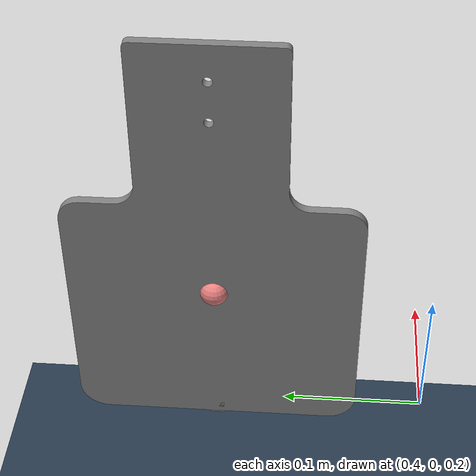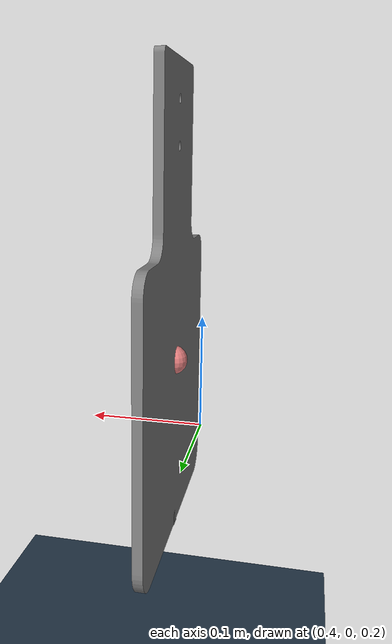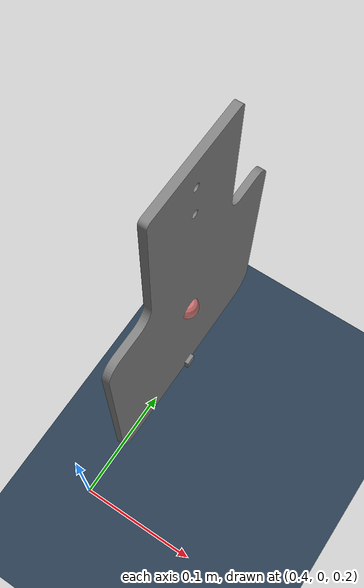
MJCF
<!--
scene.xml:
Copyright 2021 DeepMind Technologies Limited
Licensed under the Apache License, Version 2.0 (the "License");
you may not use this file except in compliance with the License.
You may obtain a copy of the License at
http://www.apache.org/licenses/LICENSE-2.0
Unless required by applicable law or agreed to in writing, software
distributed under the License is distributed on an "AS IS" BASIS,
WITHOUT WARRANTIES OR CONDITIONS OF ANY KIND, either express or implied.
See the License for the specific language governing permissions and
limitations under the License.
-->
<mujoco model="package_rearrangement">
    <include file="./src/sim_env/assets/scene.xml" />

    <option solver="CG" jacobian="sparse" integrator="implicitfast" timestep=".002" />

    <default>
    </default>

    <extension>
        <plugin plugin="mujoco.elasticity.solid" />
    </extension>

    <compiler meshdir="./src/sim_env/assets/meshes" />

    <asset>
        <mesh file="paddle.stl" name="paddle_mesh" scale="0.001 0.001 0.001" />
    </asset>

    <worldbody>
        <body name="mocap" pos="0.398 0.15 0.305" quat="1 0 0 0" mocap="true">
            <geom type="sphere" group="1" size="0.01" contype="0" conaffinity="0"
                rgba=".9 .5 .5 1" />
        </body>

        <body name="gripper_base" pos="0.395 0.15 0.5" quat="0.5 -0.5 0.5 -0.5">
            <freejoint />

            <geom type="mesh" name="gripper_collision" mesh="paddle_mesh" friction="1 0.005 0.0001"
                group="0" mass="1.5" />
            <geom type="mesh" name="gripper_visual" mesh="paddle_mesh" rgba="0.5 0.5 0.5 1"
                group="1" />

            <body name="gripper_ee" pos="0 0.31 0.005" quat="0.5 0.5 -0.5 0.5" >
                <site name="gripper_site" type="box" group="1"/>
            </body>
        </body>

    </worldbody>

    <equality>
        <weld body1="mocap" body2="gripper_ee" solref="0.01 1" solimp=".9 .9 0.01" />
    </equality>

    <sensor>
        <force site="gripper_site" />
    </sensor>

</mujoco>

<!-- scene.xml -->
<mujoco>
  <option solver="CG" jacobian="sparse" integrator="implicitfast" timestep=".002" />
  <statistic meansize=".05" />

  <visual>
    <rgba haze="0.15 0.25 0.35 1" />
    <quality shadowsize="4096" />
    <map stiffness="700" shadowscale="0.5" fogstart="1" fogend="15" zfar="40" haze="1" />
  </visual>

  <asset>
    <texture type="skybox" builtin="gradient" rgb1="0.3 0.5 0.7" rgb2="0 0 0" width="512"
      height="512" />
    <texture name="texplane" type="2d" builtin="checker" rgb1=".2 .3 .4" rgb2=".1 0.15 0.2"
      width="512" height="512" mark="cross" markrgb=".8 .8 .8" />

    <material name="matplane" reflectance="0.3" texture="texplane" texrepeat="10 10"
      texuniform="true" />
  </asset>

  <worldbody>
    <light diffuse=".4 .4 .4" specular="0.1 0.1 0.1" pos="0 0 2.0" dir="0 0 -1" castshadow="false" />
    <light directional="true" diffuse=".8 .8 .8" specular="0.2 0.2 0.2" pos="0 0 4" dir="0 0 -1" />

    <geom name="ground" type="plane" size="0 0 1" pos="0 0 0" quat="1 0 0 0" material="matplane"
      condim="1" />
  </worldbody>
</mujoco>
